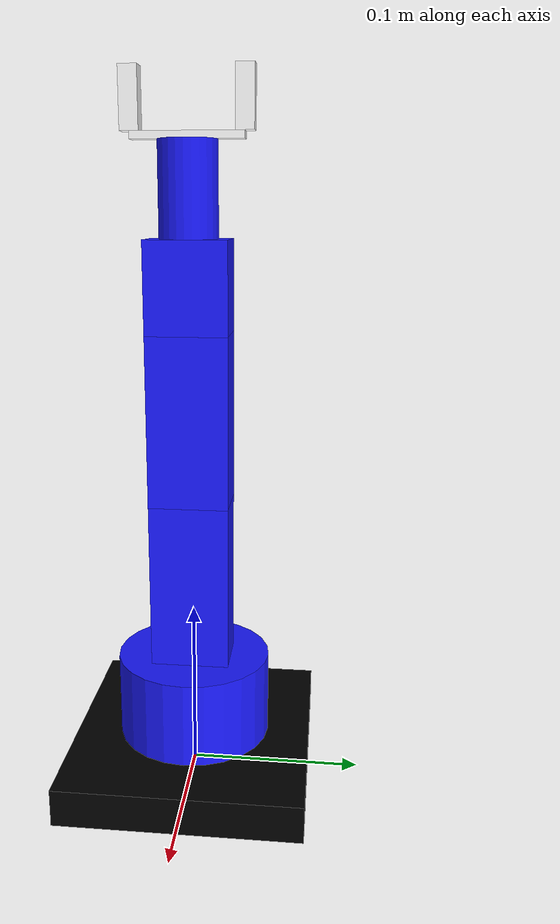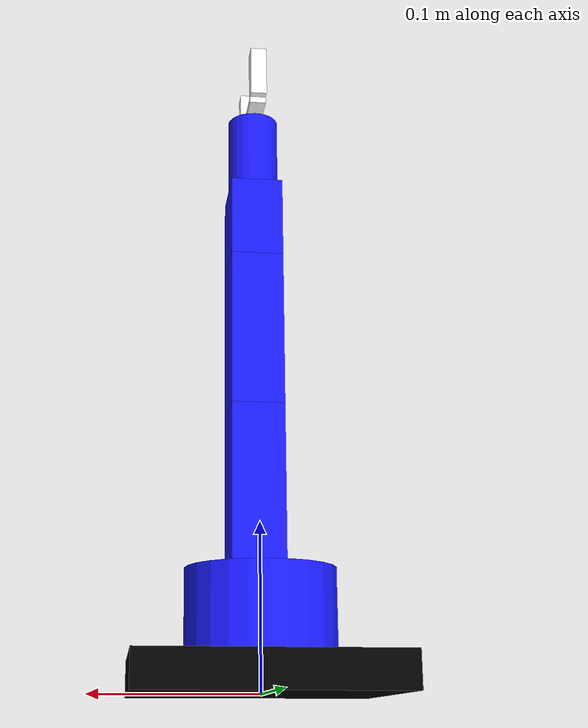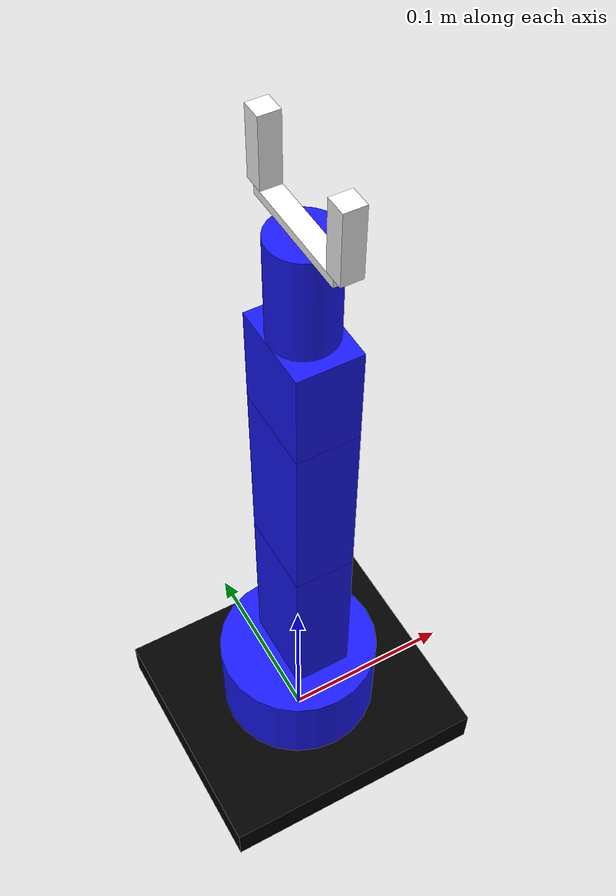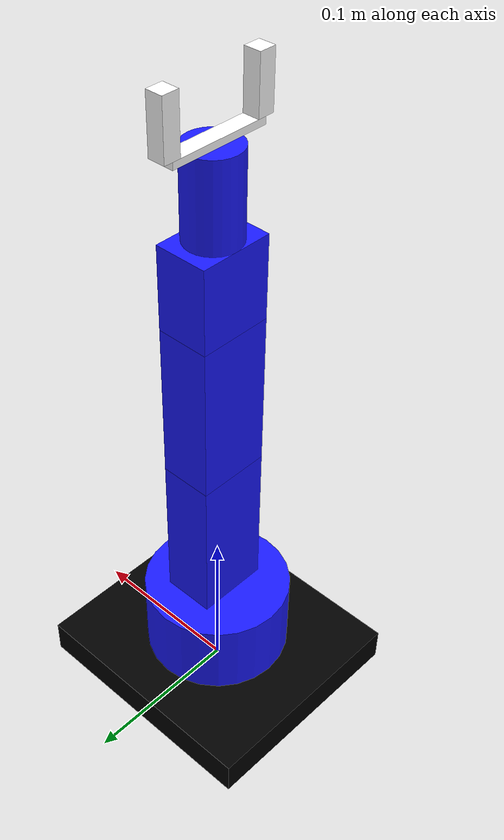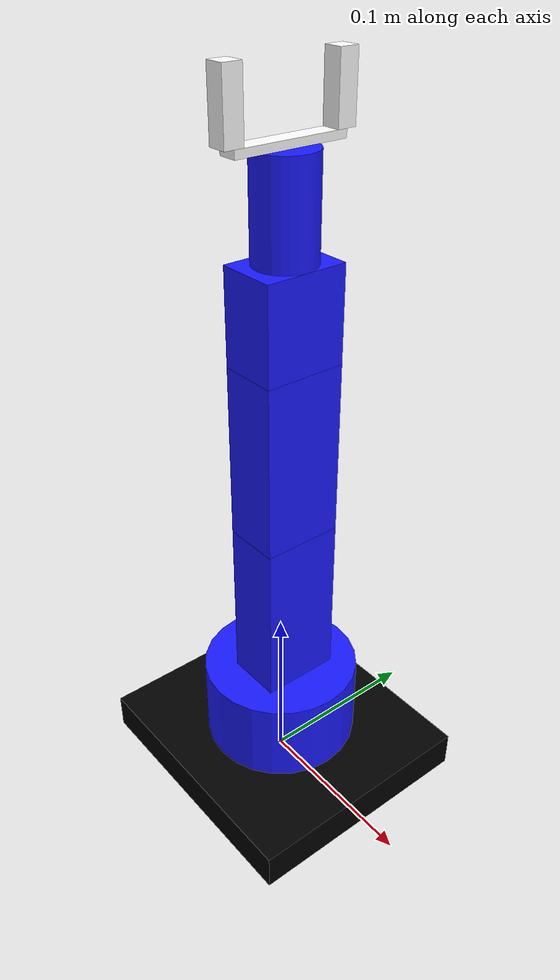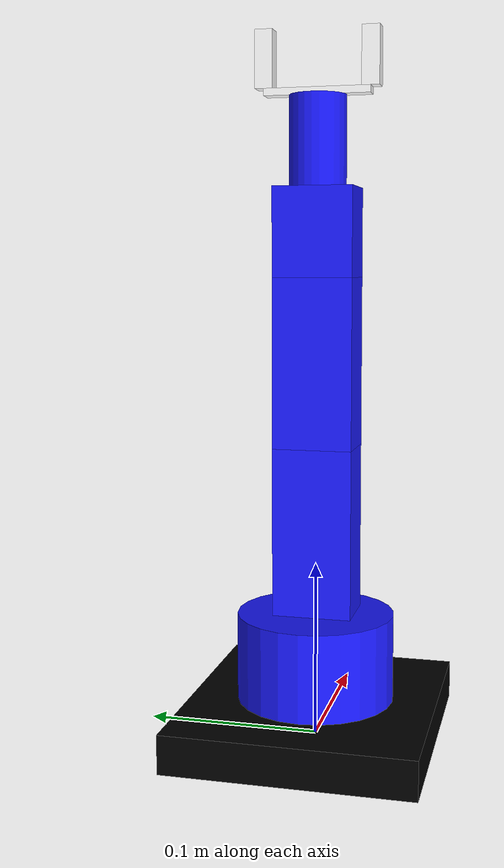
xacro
<?xml version="1.0"?>

<robot xmlns:xacro="http://wiki.ros.org/xacro" name="xarm">

  <xacro:include filename="$(find lobot_description)/urdf/xarm.transmission.xacro" />
  <xacro:include filename="$(find lobot_description)/urdf/xarm.gazebo.xacro" />

  <!-- Define the colors used in this robot -->
  <material name="Black">
    <color rgba="0 0 0 1" />
  </material>

  <material name="White">
    <color rgba="1 1 1 1" />
  </material>

  <material name="Blue">
    <color rgba="0.1 0.1 1 1" />
  </material>

  <!-- base_link properties -->
  <xacro:property name="base_link_length" value="0.154" />
  <xacro:property name="base_link_width" value="0.14" />
  <xacro:property name="base_link_height" value="0.022" />
  <xacro:property name="base_link_geometry_origin">
    <geometry>
      <box size="${base_link_length} ${base_link_width} ${base_link_height}" />
    </geometry>
    <origin xyz="0 0 ${base_link_height/2}" rpy="0 0 0" />
  </xacro:property>

  <!-- arm_link1 properties -->
  <xacro:property name="arm_link1_radius" value="0.045" />
  <xacro:property name="arm_link1_length" value="0.05" />
  <xacro:property name="arm_link1_geometry_origin">
    <geometry>
      <cylinder radius="${arm_link1_radius}" length="${arm_link1_length}" />
    </geometry>
    <origin xyz="0 0 ${arm_link1_length/2}" rpy="0 0 0" />
  </xacro:property>

  <!-- arm_link2 properties -->
  <xacro:property name="arm_link2_length" value="0.032" />
  <xacro:property name="arm_link2_width" value="0.045" />
  <xacro:property name="arm_link2_height" value="0.096" />
  <xacro:property name="arm_link2_geometry_origin">
    <geometry>
      <box size="${arm_link2_length} ${arm_link2_width} ${arm_link2_height}" />
    </geometry>
    <origin xyz="0 0 ${arm_link2_height/2}" rpy="0 0 0" />
  </xacro:property>

  <!-- arm_link3 properties -->
  <xacro:property name="arm_link3_length" value="0.032" />
  <xacro:property name="arm_link3_width" value="0.045" />
  <xacro:property name="arm_link3_height" value="0.096" />
  <xacro:property name="arm_link3_geometry_origin">
    <geometry>
      <box size="${arm_link3_length} ${arm_link3_width} ${arm_link3_height}" />
    </geometry>
    <origin xyz="0 0 ${arm_link3_height/2}" rpy="0 0 0" />
  </xacro:property>

  <!-- arm_link4 properties -->
  <xacro:property name="arm_link4_length" value="0.032" />
  <xacro:property name="arm_link4_width" value="0.045" />
  <xacro:property name="arm_link4_height" value="0.05" />
  <xacro:property name="arm_link4_geometry_origin">
    <geometry>
      <box size="${arm_link4_length} ${arm_link4_width} ${arm_link4_height}" />
    </geometry>
    <origin xyz="0 0 ${arm_link4_height/2}" rpy="0 0 0" />
  </xacro:property>

  <!-- arm_link5 properties -->
  <xacro:property name="arm_link5_radius" value="0.016" />
  <xacro:property name="arm_link5_length" value="0.05" />
  <xacro:property name="arm_link5_geometry_origin">
    <geometry>
      <cylinder radius="${arm_link5_radius}" length="${arm_link5_length}" />
    </geometry>
    <origin xyz="0 0 ${arm_link5_length/2}" rpy="0 0 0" />
  </xacro:property>

  <!-- gripper_link properties -->
  <xacro:property name="gripper_link_length" value="0.01" />
  <xacro:property name="gripper_link_width" value="0.06" />
  <xacro:property name="gripper_link_height" value="0.004" />
  <xacro:property name="gripper_link_geometry_origin">
    <geometry>
      <box size="${gripper_link_length} ${gripper_link_width} ${gripper_link_height}" />
    </geometry>
    <origin xyz="0 0 ${gripper_link_height/2}" rpy="0 0 0" />
  </xacro:property>

  <!-- Gripper properties -->
  <xacro:property name="gripper_length" value="0.01" />
  <xacro:property name="gripper_width" value="0.01" />
  <xacro:property name="gripper_height" value="0.032" />
  <xacro:property name="gripper_geometry_origin">
    <geometry>
      <box size="${gripper_length} ${gripper_width} ${gripper_height}" />
    </geometry>
    <origin xyz="0 0 ${gripper_height/2}" rpy="0 0 0" />
  </xacro:property>

  <!-- Used to fix robot to Gazebo -->
  <link name="dummy_base" />
  <joint name="fixed" type="fixed">
    <origin xyz="0 0 0" rpy="0 0 0" />
    <parent link="dummy_base" />
    <child link="base_link" />
  </joint>

  <!--////////// BASE_LINK //////////-->
  <link name="base_link">
    <visual>
      <xacro:insert_block name="base_link_geometry_origin" />
      <material name="Black" />
    </visual>
    <collision>
      <xacro:insert_block name="base_link_geometry_origin" />
    </collision>
    <xacro:box_inertial_matrix length="${base_link_length}" width="${base_link_width}" height="${base_link_height}" mass="${2*base_mass}">
      <origin xyz="0 0 0" rpy="0 0 0" />
    </xacro:box_inertial_matrix>
  </link>

  <!--////////// ARM_LINK1 //////////-->
  <link name="arm_link1">
    <visual>
      <xacro:insert_block name="arm_link1_geometry_origin" />
      <material name="Blue" />
    </visual>
    <collision>
      <xacro:insert_block name="arm_link1_geometry_origin" />
    </collision>
    <xacro:cylinder_inertial_matrix radius="${arm_link1_radius}" length="${arm_link1_length}" mass="${0.5*base_mass}">
      <origin xyz="0 0 0" rpy="0 0 0" />
    </xacro:cylinder_inertial_matrix>
  </link>
  <joint name="arm_joint1" type="revolute">
    <origin xyz="0 0 ${base_link_height}" rpy="0 0 0" />
    <parent link="base_link" />
    <child link="arm_link1" />
    <axis xyz="0 0 1" />
    <limit lower="${-pi*2/3}" upper="${pi*2/3}" effort="16" velocity="2.5" />
    <dynamics damping="50" friction="1"/>
  </joint>

  <!--////////// ARM_LINK2 //////////-->
  <link name="arm_link2">
    <visual>
      <xacro:insert_block name="arm_link2_geometry_origin" />
      <material name="Blue" />
    </visual>
    <collision>
      <xacro:insert_block name="arm_link2_geometry_origin" />
    </collision>
    <xacro:box_inertial_matrix length="${arm_link2_length}" width="${arm_link2_width}" height="${arm_link2_height}" mass="${0.15*base_mass}">
      <origin xyz="0 0 0" rpy="0 0 0" />
    </xacro:box_inertial_matrix>
  </link>
  <joint name="arm_joint2" type="revolute">
    <origin xyz="0.003 0 ${arm_link1_length}" rpy="0 0 0" />
    <parent link="arm_link1" />
    <child link="arm_link2" />
    <axis xyz="0 1 0" />
    <limit lower="${-pi/2}" upper="${pi/2}" effort="16" velocity="2" />
    <dynamics damping="50" friction="1"/>
  </joint>

  <!--////////// ARM_LINK3 //////////-->
  <link name="arm_link3">
    <visual>
      <xacro:insert_block name="arm_link3_geometry_origin" />
      <material name="Blue" />
    </visual>
    <collision>
      <xacro:insert_block name="arm_link3_geometry_origin" />
    </collision>
    <xacro:box_inertial_matrix length="${arm_link3_length}" width="${arm_link3_width}" height="${arm_link3_height}" mass="${0.15*base_mass}">
      <origin xyz="0 0 0" rpy="0 0 0" />
    </xacro:box_inertial_matrix>
  </link>
  <joint name="arm_joint3" type="revolute">
    <origin xyz="0 0 ${arm_link2_height}" rpy="0 0 0" />
    <parent link="arm_link2" />
    <child link="arm_link3" />
    <axis xyz="0 1 0" />
    <limit lower="${-pi*2/3}" upper="${pi*2/3}" effort="16" velocity="2" />
    <dynamics damping="50" friction="1"/>
  </joint>

  <!--////////// ARM_LINK4 //////////-->
  <link name="arm_link4">
    <visual>
      <xacro:insert_block name="arm_link4_geometry_origin" />
      <material name="Blue" />
    </visual>
    <collision>
      <xacro:insert_block name="arm_link4_geometry_origin" />
    </collision>
    <xacro:box_inertial_matrix length="${arm_link4_length}" width="${arm_link4_width}" height="${arm_link4_height}" mass="${0.07*base_mass}">
      <origin xyz="0 0 0" rpy="0 0 0" />
    </xacro:box_inertial_matrix>
  </link>
  <joint name="arm_joint4" type="revolute">
    <origin xyz="0 0 ${arm_link3_height}" rpy="0 0 0" />
    <parent link="arm_link3" />
    <child link="arm_link4" />
    <axis xyz="0 1 0" />
    <limit lower="${-pi*2/3}" upper="${pi*2/3}" effort="16" velocity="2" />
    <dynamics damping="50" friction="1"/>
  </joint>

  <!--////////// ARM_LINK5 //////////-->
  <link name="arm_link5">
    <visual>
      <xacro:insert_block name="arm_link5_geometry_origin" />
      <material name="Blue" />
    </visual>
    <collision>
      <xacro:insert_block name="arm_link5_geometry_origin" />
    </collision>
    <xacro:cylinder_inertial_matrix radius="${arm_link5_radius}" length="${arm_link5_length}" mass="${0.07*base_mass}">
      <origin xyz="0 0 0" rpy="0 0 0" />
    </xacro:cylinder_inertial_matrix>
  </link>
  <joint name="arm_joint5" type="revolute">
    <origin xyz="0 0 ${arm_link4_height}" rpy="0 0 0" />
    <parent link="arm_link4" />
    <child link="arm_link5" />
    <axis xyz="0 0 1" />
    <limit lower="${-pi*2/3}" upper="${pi*2/3}" effort="16" velocity="2.5" />
    <dynamics damping="50" friction="1"/>
  </joint>

  <!--////////// GRIPPER_LINK //////////-->
  <link name="gripper_link">
    <visual>
      <xacro:insert_block name="gripper_link_geometry_origin" />
      <material name="White" />
    </visual>
    <collision>
      <xacro:insert_block name="gripper_link_geometry_origin" />
    </collision>
    <xacro:box_inertial_matrix length="${gripper_link_length}" width="${gripper_link_width}" height="${gripper_link_height}" mass="${0.05*base_mass}">
      <origin xyz="0 0 0" rpy="0 0 0" />
    </xacro:box_inertial_matrix>
  </link>
  <joint name="arm_to_gripper" type="fixed">
    <origin xyz="0 0 ${arm_link5_length}" rpy="0 0 0" />
    <parent link="arm_link5" />
    <child link="gripper_link" />
  </joint>

  <!--////////// LEFT_GRIPPER //////////-->
  <link name="left_gripper">
    <visual>
      <xacro:insert_block name="gripper_geometry_origin" />
      <material name="White" />
    </visual>
    <collision>
      <xacro:insert_block name="gripper_geometry_origin" />
    </collision>
    <xacro:box_inertial_matrix length="${gripper_length}" width="${gripper_width}" height="${gripper_height}" mass="${0.02*base_mass}">
      <origin xyz="0 0 0" rpy="0 0 0" />
    </xacro:box_inertial_matrix>
  </link>
  <joint name="gripper_joint1" type="prismatic">
    <origin rpy="0 0 0" xyz="0 ${-gripper_link_width/2} ${gripper_link_height}" />
    <parent link="gripper_link" />
    <child link="left_gripper" />
    <axis xyz="0 1 0" />
    <limit lower="0" upper="0.03" effort="16" velocity="2" />
    <dynamics damping="50" friction="1"/>
  </joint>

  <!--////////// RIGHT_GRIPPER //////////-->
  <link name="right_gripper">
    <visual>
      <xacro:insert_block name="gripper_geometry_origin" />
      <material name="White" />
    </visual>
    <collision>
      <xacro:insert_block name="gripper_geometry_origin" />
    </collision>
    <xacro:box_inertial_matrix length="${gripper_length}" width="${gripper_width}" height="${gripper_height}" mass="${0.02*base_mass}">
      <origin xyz="0 0 0" rpy="0 0 0" />
    </xacro:box_inertial_matrix>
  </link>
  <joint name="gripper_joint2" type="prismatic">
    <origin rpy="0 0 0" xyz="0 ${gripper_link_width/2} ${gripper_link_height}" />
    <parent link="gripper_link" />
    <child link="right_gripper" />
    <axis xyz="0 1 0" />
    <limit lower="-0.03" upper="0" effort="16" velocity="2" />
    <mimic joint="gripper_joint1" multiplier="-1" />
    <dynamics damping="50" friction="1"/>
  </joint>
</robot>

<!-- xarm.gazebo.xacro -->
<robot xmlns:xacro="http://wiki.ros.org/xacro">

  <xacro:property name="base_mass" value="1" />

  <xacro:macro name="box_inertial_matrix" params="length width height mass *origin">
    <inertial>
      <mass value="${mass}" />
      <inertia
        ixx="1" ixy="0" ixz="0"
        iyy="0.5" iyz="0"
        izz="1" />
    </inertial>
  </xacro:macro>

  <xacro:macro name="cylinder_inertial_matrix" params="radius length mass *origin">
    <inertial>
      <mass value="${mass}" />
      <inertia
        ixx="1" ixy="0" ixz="0"
        iyy="0.5" iyz="0"
        izz="1" />
    </inertial>
  </xacro:macro>

  <!-- ros_control plugin -->
  <gazebo>
    <plugin name="gazebo_ros_control" filename="libgazebo_ros_control.so">
      <robotNamespace>/xarm</robotNamespace>
    </plugin>
  </gazebo>

  <gazebo reference="base_link">
    <material>Gazebo/Black</material>
  </gazebo>

  <gazebo reference="arm_link1">
    <material>Gazebo/Orange</material>
  </gazebo>

  <gazebo reference="arm_link2">
    <material>Gazebo/Orange</material>
  </gazebo>

  <gazebo reference="arm_link3">
    <material>Gazebo/Orange</material>
  </gazebo>

  <gazebo reference="arm_link4">
    <material>Gazebo/Orange</material>
  </gazebo>

  <gazebo reference="arm_link5">
    <material>Gazebo/Orange</material>
  </gazebo>

  <gazebo reference="gripper_link">
    <material>Gazebo/Red</material>
  </gazebo>

  <gazebo reference="left_gripper">
    <material>Gazebo/Red</material>
  </gazebo>

  <gazebo reference="right_gripper">
    <material>Gazebo/Red</material>
  </gazebo>

</robot>
